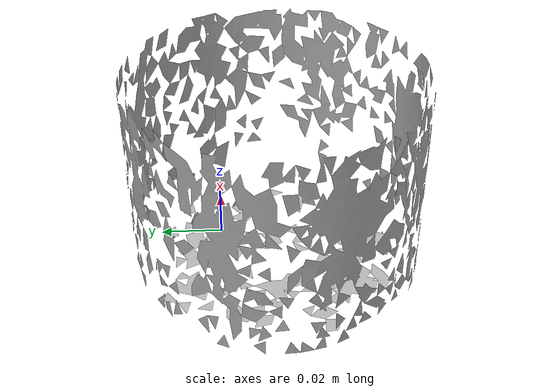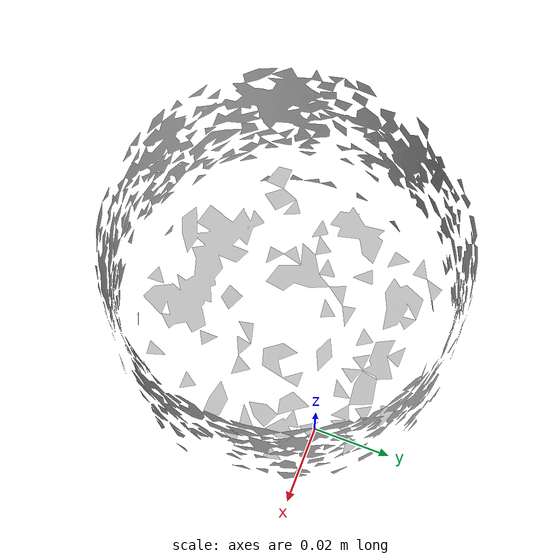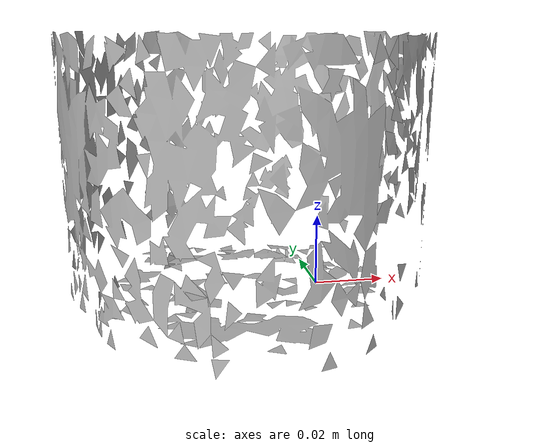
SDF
<?xml version="1.0" ?>
<sdf version="1.4">
  <model name='ycb_065-j_cups'>
    <link name='body'>
      <inertial>
        <mass>0.013</mass>
        <pose>-0.0231691655159 -0.0162880986693 0.0364702562981 0 0 0</pose>
        <inertia>
          <ixx>1.92123215708e-05</ixx>
          <ixy>-1.48924632512e-08</ixy>
          <ixz>1.21003046628e-07</ixz>
          <iyy>1.94491019421e-05</iyy>
          <iyz>6.470846738e-08</iyz>
          <izz>2.2355604837e-05</izz>
        </inertia>
      </inertial>
      <visual name='ycb_065-j_cups_visual'>
        <pose>0 0 0 0 0 0</pose>
        <geometry>
          <mesh>
            <uri>model://ycb_065-j_cups/meshes/textured.dae</uri>
          </mesh>
        </geometry>
      </visual>
      <collision name='ycb_065-j_cups_collision'>
        <pose>0 0 0 0 0 0</pose>
        <geometry>
          <mesh>
            <uri>model://ycb_065-j_cups/meshes/nontextured.stl</uri>
          </mesh>
        </geometry>
        <max_contacts>10</max_contacts>
      </collision>
    </link>
  </model>
</sdf>
